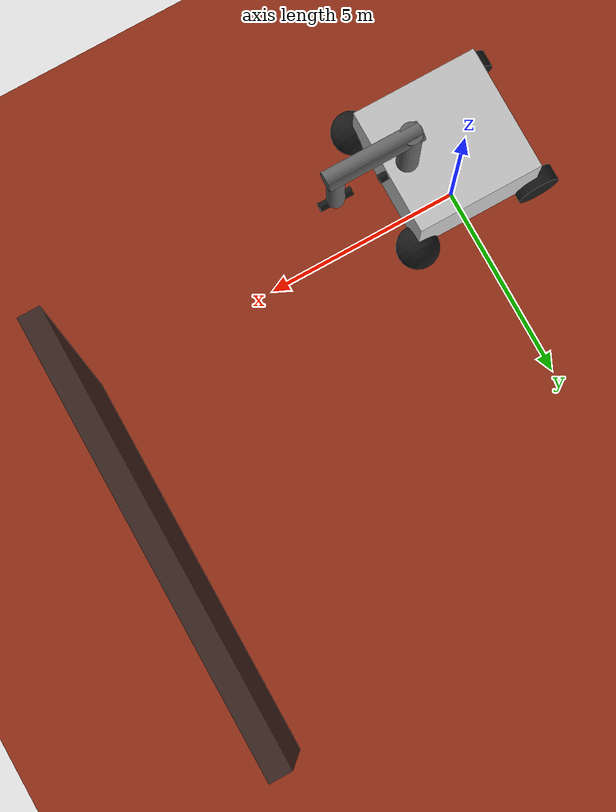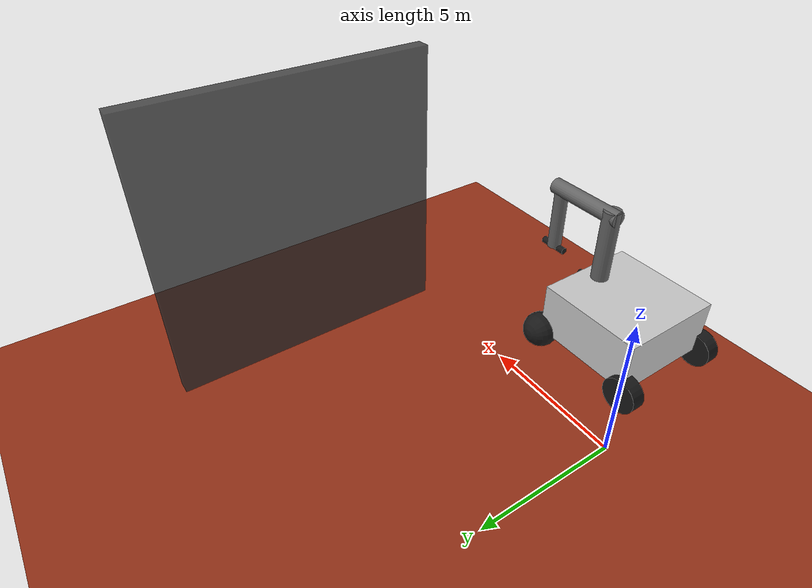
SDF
<sdf version="1.9">
 <world name="rover_world">
  <physics name="1ms" type="ignored">
   <max_step_size>0.001</max_step_size>
   <real_time_factor>1.0</real_time_factor>
  </physics>
  <plugin filename="gz-sim-physics-system" name="gz::sim::systems::Physics"/>
  <plugin filename="gz-sim-user-commands-system" name="gz::sim::systems::UserCommands"/>
  <plugin filename="gz-sim-scene-broadcaster-system" name="gz::sim::systems::SceneBroadcaster"/>
  <plugin filename="libignition-gazebo-sensors-system.so" name="ignition::gazebo::systems::Sensors">
   <render_engine>ogre2</render_engine>
  </plugin>
  <light type="directional" name="sun">
   <pose>0 0 10 0 0 0</pose>
   <diffuse>0.8 0.8 0.8 1</diffuse>
   <specular>0.2 0.2 0.2 1</specular>
   <attenuation>
    <range>1000</range>
    <constant>0.9</constant>
    <linear>0.01</linear>
    <quadratic>0.001</quadratic>
   </attenuation>
   <direction>-0.5 0.1 -0.9</direction>
  </light>
  <model name="ground_plane">
   <static>true</static>
   <link name="link">
    <collision name="collision">
     <geometry><plane><normal>0 0 1</normal></plane></geometry>
     <surface>
      <bounce><restitution_coefficient>0.7</restitution_coefficient><threshold>0.1</threshold></bounce>
     </surface>
    </collision>
    <visual name="visual">
     <geometry><plane><normal>0 0 1</normal><size>1000 1000</size></plane></geometry>
     <surface>
      <friction>
       <ode><mu>1.0</mu><mu2>0.5</mu2></ode>
       <torsional>
        <coefficient>1.0</coefficient>
        <use_patch_radius>true</use_patch_radius>
        <patch_radius>0.1</patch_radius>
        <surface_radius>0.1</surface_radius>
       </torsional>
      </friction>
     </surface>
     <material>
      <ambient>0.2 0.1 0.05 1.0</ambient>
      <diffuse>0.6 0.2 0.1 1.0</diffuse>
      <specular>0.05 0.02 0.01 1.0</specular>
     </material>
    </visual>
   </link>
  </model>
  <model name="wall">
   <static>true</static>
   <pose>10 5 5 0 0 0</pose>
   <link name="box">
    <visual name="visual">
     <geometry><box><size>0.5 10.0 10.0</size></box></geometry>
     <material>
      <ambient>0.2 0.2 0.2 0.8</ambient>
      <diffuse>0.2 0.2 0.2 0.8</diffuse>
      <specular>0.2 0.2 0.2 0.8</specular>
     </material>
    </visual>
    <collision name="collision"><geometry><box><size>0.5 10.0 10.0</size></box></geometry></collision>
   </link>
  </model>
  <model name="rover" canonical_link="chassis">
   <pose relative_to="world">0 0 0 0 0 0</pose>
   <link name="chassis">
    <pose relative_to="__model__">0.5 0 5 0 0 0</pose>
    <inertial>
     <mass>4.91</mass>
     <inertia><ixx>0.972</ixx><ixy>0</ixy><ixz>0</ixz><iyy>0.972</iyy><iyz>0</iyz><izz>1.747</izz></inertia>
    </inertial>
    <visual name="visual">
     <geometry><box><size>3 3 1.5</size></box></geometry>
     <material>
      <ambient>0.3 0.3 0.3 1</ambient>
      <diffuse>0.8 0.8 0.8 1</diffuse>
      <specular>0.5 0.5 0.5 1</specular>
     </material>
    </visual>
    <collision name="collision"><geometry><box><size>3 3 1.5</size></box></geometry></collision>
    <sensor name="gpu_lidar" type="gpu_lidar">
     <pose relative_to="chassis">1.6 0 0.5 0 0 0</pose>
     <topic>lidar</topic>
     <update_rate>10</update_rate>
     <ray>
      <scan>
       <horizontal>
        <samples>640</samples>
        <resolution>1</resolution>
        <min_angle>-1.396263</min_angle>
        <max_angle>1.396263</max_angle>
       </horizontal>
       <vertical>
        <samples>1</samples>
        <resolution>0.01</resolution>
        <min_angle>0</min_angle>
        <max_angle>0</max_angle>
       </vertical>
      </scan>
      <range><min>0.08</min><max>10.0</max><resolution>0.01</resolution></range>
     </ray>
     <always_on>1</always_on>
     <visualize>true</visualize>
    </sensor>
   </link>
   <link name="sensor">
    <pose relative_to="chassis">1.6 0 0.5 0 1.5707 0</pose>
    <visual name="visual">
     <geometry><cylinder><radius>0.1</radius><length>0.2</length></cylinder></geometry>
     <material>
      <ambient>0.1 0.1 0.1 1</ambient>
      <diffuse>0.1 0.1 0.1 1</diffuse>
      <specular>0.5 0.5 0.5 1</specular>
     </material>
    </visual>
   </link>
   <link name="left_back_wheel">
    <pose relative_to="chassis">-1.5 1.5 -0.75 -1.5707 0 0</pose>
    <inertial>
     <mass>0.6</mass>
     <inertia><ixx>0.03</ixx><ixy>0</ixy><ixz>0</ixz><iyy>0.03</iyy><iyz>0</iyz><izz>0.06</izz></inertia>
    </inertial>
    <visual name="visual">
     <geometry><cylinder><radius>0.5</radius><length>0.4</length></cylinder></geometry>
     <material>
      <ambient>0.1 0.1 0.1 1</ambient>
      <diffuse>0.1 0.1 0.1 1</diffuse>
      <specular>0.5 0.5 0.5 1</specular>
     </material>
    </visual>
    <collision name="collision">
     <geometry><cylinder><radius>0.5</radius><length>0.4</length></cylinder></geometry>
     <surface>
      <bounce><restitution_coefficient>0.4</restitution_coefficient><threshold>0.1</threshold></bounce>
     </surface>
    </collision>
   </link>
   <link name="right_back_wheel">
    <pose relative_to="chassis">-1.5 -1.5 -0.75 -1.5707 0 0</pose>
    <inertial>
     <mass>0.6</mass>
     <inertia><ixx>0.03</ixx><ixy>0</ixy><ixz>0</ixz><iyy>0.03</iyy><iyz>0</iyz><izz>0.06</izz></inertia>
    </inertial>
    <visual name="visual">
     <geometry><cylinder><radius>0.5</radius><length>0.4</length></cylinder></geometry>
     <material>
      <ambient>0.1 0.1 0.1 1</ambient>
      <diffuse>0.1 0.1 0.1 1</diffuse>
      <specular>0.5 0.5 0.5 1</specular>
     </material>
    </visual>
    <collision name="collision">
     <geometry><cylinder><radius>0.5</radius><length>0.4</length></cylinder></geometry>
     <surface>
      <bounce><restitution_coefficient>0.4</restitution_coefficient><threshold>0.1</threshold></bounce>
     </surface>
    </collision>
   </link>
   <link name="left_front_wheel">
    <pose relative_to="chassis">1.5 1.5 -0.75 -1.5707 0 0</pose>
    <inertial>
     <mass>0.364</mass>
     <inertia><ixx>0.02</ixx><ixy>0</ixy><ixz>0</ixz><iyy>0.02</iyy><iyz>0</iyz><izz>0.02</izz></inertia>
    </inertial>
    <visual name="visual">
     <geometry><sphere><radius>0.5</radius></sphere></geometry>
     <material>
      <ambient>0.1 0.1 0.1 1</ambient>
      <diffuse>0.1 0.1 0.1 1</diffuse>
      <specular>0.5 0.5 0.5 1</specular>
     </material>
    </visual>
    <collision name="collision">
     <geometry><sphere><radius>0.5</radius></sphere></geometry>
     <surface>
      <bounce><restitution_coefficient>0.7</restitution_coefficient><threshold>0.1</threshold></bounce>
     </surface>
    </collision>
   </link>
   <link name="right_front_wheel">
    <pose relative_to="chassis">1.5 -1.5 -0.75 -1.5707 0 0</pose>
    <inertial>
     <mass>0.364</mass>
     <inertia><ixx>0.02</ixx><ixy>0</ixy><ixz>0</ixz><iyy>0.02</iyy><iyz>0</iyz><izz>0.02</izz></inertia>
    </inertial>
    <visual name="visual">
     <geometry><sphere><radius>0.5</radius></sphere></geometry>
     <material>
      <ambient>0.1 0.1 0.1 1</ambient>
      <diffuse>0.1 0.1 0.1 1</diffuse>
      <specular>0.5 0.5 0.5 1</specular>
     </material>
    </visual>
    <collision name="collision">
     <geometry><sphere><radius>0.5</radius></sphere></geometry>
     <surface>
      <bounce><restitution_coefficient>0.7</restitution_coefficient><threshold>0.1</threshold></bounce>
     </surface>
    </collision>
   </link>
   <link name="primary_arm">
    <pose relative_to="chassis">1 0 1.75 0 0 0</pose>
    <inertial>
     <mass>0.3</mass>
     <inertia><ixx>0.02</ixx><ixy>0</ixy><ixz>0</ixz><iyy>0.02</iyy><iyz>0</iyz><izz>0.04</izz></inertia>
    </inertial>
    <visual name="visual">
     <geometry><cylinder><radius>0.25</radius><length>2.25</length></cylinder></geometry>
     <material>
      <ambient>0.4 0.4 0.4 1</ambient>
      <diffuse>0.4 0.4 0.4 1</diffuse>
      <specular>0.5 0.5 0.5 1</specular>
     </material>
    </visual>
    <collision name="collision">
     <geometry><cylinder><radius>0.25</radius><length>2.25</length></cylinder></geometry>
    </collision>
   </link>
   <link name="secondary_arm">
    <pose relative_to="chassis">1.9 0 2.7 0 1.5707 0</pose>
    <inertial>
     <mass>0.3</mass>
     <inertia><ixx>0.02</ixx><ixy>0</ixy><ixz>0</ixz><iyy>0.02</iyy><iyz>0</iyz><izz>0.04</izz></inertia>
    </inertial>
    <visual name="visual">
     <geometry><cylinder><radius>0.225</radius><length>2.25</length></cylinder></geometry>
     <material>
      <ambient>0.4 0.4 0.4 1</ambient>
      <diffuse>0.4 0.4 0.4 1</diffuse>
      <specular>0.5 0.5 0.5 1</specular>
     </material>
    </visual>
    <collision name="collision">
     <geometry><cylinder><radius>0.225</radius><length>2.25</length></cylinder></geometry>
    </collision>
   </link>
   <link name="tertiary_arm">
    <pose relative_to="secondary_arm">1 0 0.875 0 1.5707 0</pose>
    <inertial>
     <mass>0.2</mass>
     <inertia><ixx>0.01</ixx><ixy>0</ixy><ixz>0</ixz><iyy>0.01</iyy><iyz>0</iyz><izz>0.02</izz></inertia>
    </inertial>
    <visual name="visual">
     <geometry><cylinder><radius>0.2</radius><length>1.75</length></cylinder></geometry>
     <material>
      <ambient>0.4 0.4 0.4 1</ambient>
      <diffuse>0.4 0.4 0.4 1</diffuse>
      <specular>0.5 0.5 0.5 1</specular>
     </material>
    </visual>
    <collision name="collision">
     <geometry><cylinder><radius>0.2</radius><length>1.75</length></cylinder></geometry>
    </collision>
   </link>
   <link name="hand">
    <pose relative_to="tertiary_arm">0 0 0.875 0 1.5707 0</pose>
    <inertial>
     <mass>0.1</mass>
     <inertia><ixx>0.005</ixx><ixy>0</ixy><ixz>0</ixz><iyy>0.005</iyy><iyz>0</iyz><izz>0.01</izz></inertia>
    </inertial>
    <visual name="visual">
     <geometry><cylinder><radius>0.1</radius><length>0.8</length></cylinder></geometry>
     <material>
      <ambient>0.1 0.1 0.1 1</ambient>
      <diffuse>0.1 0.1 0.1 1</diffuse>
      <specular>0.5 0.5 0.5 1</specular>
     </material>
    </visual>
    <collision name="collision">
     <geometry><cylinder><radius>0.1</radius><length>0.8</length></cylinder></geometry>
    </collision>
   </link>
   <joint name="sensor_joint" type="fixed">
    <pose relative_to="chassis">1.6 0 0.5 0 1.5707 0</pose>
    <parent>chassis</parent>
    <child>sensor</child>
   </joint>
   <joint name="left_wheel_joint" type="revolute">
    <pose relative_to="left_back_wheel"/>
    <parent>chassis</parent>
    <child>left_back_wheel</child>
    <axis>
     <xyz expressed_in="__model__">0 1 0</xyz>
     <dynamics><spring_stiffness>50</spring_stiffness><spring_damping>10</spring_damping></dynamics>
     <limit><lower>-1.79769e+308</lower><upper>1.79769e+308</upper></limit>
    </axis>
   </joint>
   <joint name="right_wheel_joint" type="revolute">
    <pose relative_to="right_back_wheel"/>
    <parent>chassis</parent>
    <child>right_back_wheel</child>
    <axis>
     <xyz expressed_in="__model__">0 1 0</xyz>
     <dynamics><spring_stiffness>50</spring_stiffness><spring_damping>10</spring_damping></dynamics>
     <limit><lower>-1.79769e+308</lower><upper>1.79769e+308</upper></limit>
    </axis>
   </joint>
   <joint name="left_front_wheel_joint" type="ball">
    <parent>chassis</parent>
    <child>left_front_wheel</child>
   </joint>
   <joint name="right_front_wheel_joint" type="ball">
    <parent>chassis</parent>
    <child>right_front_wheel</child>
   </joint>
   <joint name="primary_arm_joint" type="revolute">
    <pose relative_to="primary_arm"/>
    <parent>chassis</parent>
    <child>primary_arm</child>
    <axis>
     <xyz expressed_in="__model__">0 0 1</xyz>
     <limit><lower>-1.5707</lower><upper>1.5707</upper><effort>1e6</effort><velocity>1</velocity></limit>
    </axis>
   </joint>
   <joint name="secondary_arm_joint" type="fixed">
    <pose relative_to="primary_arm"/>
    <parent>primary_arm</parent>
    <child>secondary_arm</child>
   </joint>
   <joint name="tertiary_arm_joint" type="prismatic">
    <pose relative_to="secondary_arm"/>
    <parent>secondary_arm</parent>
    <child>tertiary_arm</child>
    <axis>
     <xyz>1 0 0</xyz>
     <limit><lower>-1</lower><upper>0</upper><effort>10</effort><velocity>0.5</velocity></limit>
    </axis>
   </joint>
   <joint name="hand_joint" type="revolute">
    <pose relative_to="tertiary_arm"/>
    <parent>tertiary_arm</parent>
    <child>hand</child>
    <axis>
     <xyz expressed_in="__model__">0 0 1</xyz>
     <limit><lower>-1.79769e+308</lower><upper>1.79769e+308</upper></limit>
    </axis>
   </joint>
   <plugin filename="libignition-gazebo-diff-drive-system.so" name="ignition::gazebo::systems::DiffDrive">
    <left_joint>left_wheel_joint</left_joint>
    <right_joint>right_wheel_joint</right_joint>
    <max_force>10</max_force>
    <wheel_separation>3</wheel_separation>
    <wheel_radius>0.5</wheel_radius>
    <odom_publish_frequency>1</odom_publish_frequency>
    <topic>debug_cmd_vel</topic>
    <stop_on_zero_velocity>true</stop_on_zero_velocity>
   </plugin>
   <plugin filename="libignition-gazebo-triggered-publisher-system.so" name="ignition::gazebo::systems::TriggeredPublisher">
    <input type="ignition.msgs.Int32" topic="/keyboard/keypress"><match field="data">16777235</match></input>
    <output type="ignition.msgs.Twist" topic="/debug_cmd_vel">linear: {x: 1}, angular: {z: 0}</output>
    <default>
     <output type="ignition.msgs.Twist" topic="/debug_cmd_vel">linear: {x: 0.0}, angular: {z: 0.0}</output>
    </default>
    <rate>1</rate>
   </plugin>
   <plugin filename="libignition-gazebo-triggered-publisher-system.so" name="ignition::gazebo::systems::TriggeredPublisher">
    <input type="ignition.msgs.Int32" topic="/keyboard/keypress"><match field="data">16777237</match></input>
    <output type="ignition.msgs.Twist" topic="/debug_cmd_vel">linear: {x: -1}, angular: {z: 0.0}</output>
    <default>
     <output type="ignition.msgs.Twist" topic="/debug_cmd_vel">linear: {x: 0.0}, angular: {z: 0.0}</output>
    </default>
    <rate>1</rate>
   </plugin>
   <plugin filename="libignition-gazebo-triggered-publisher-system.so" name="ignition::gazebo::systems::TriggeredPublisher">
    <input type="ignition.msgs.Int32" topic="/keyboard/keypress"><match field="data">16777234</match></input>
    <output type="ignition.msgs.Twist" topic="/debug_cmd_vel">linear: {x: 0.0}, angular: {z: 0.5}</output>
    <default>
     <output type="ignition.msgs.Twist" topic="/debug_cmd_vel">linear: {x: 0.0}, angular: {z: 0.0}</output>
    </default>
    <rate>1</rate>
   </plugin>
   <plugin filename="libignition-gazebo-triggered-publisher-system.so" name="ignition::gazebo::systems::TriggeredPublisher">
    <input type="ignition.msgs.Int32" topic="/keyboard/keypress"><match field="data">16777236</match></input>
    <output type="ignition.msgs.Twist" topic="/debug_cmd_vel">linear: {x: 0.0}, angular: {z: -0.5}</output>
    <default>
     <output type="ignition.msgs.Twist" topic="/debug_cmd_vel">linear: {x: 0.0}, angular: {z: 0.0}</output>
    </default>
    <rate>1</rate>
   </plugin>
   <plugin filename="libignition-gazebo-triggered-publisher-system.so" name="ignition::gazebo::systems::TriggeredPublisher">
    <input type="ignition.msgs.Int32" topic="/keyboard/keypress"><match field="data">81</match></input>
    <output type="ignition.msgs.Twist" topic="/debug_cmd_vel">linear: {x: 0.0}, angular: {z: 0.0}</output>
    <default>
     <output type="ignition.msgs.Twist" topic="/debug_cmd_vel">linear: {x: 0.0}, angular: {z: 0.0}</output>
    </default>
    <rate>1</rate>
   </plugin>
  </model>
 </world>
</sdf>
